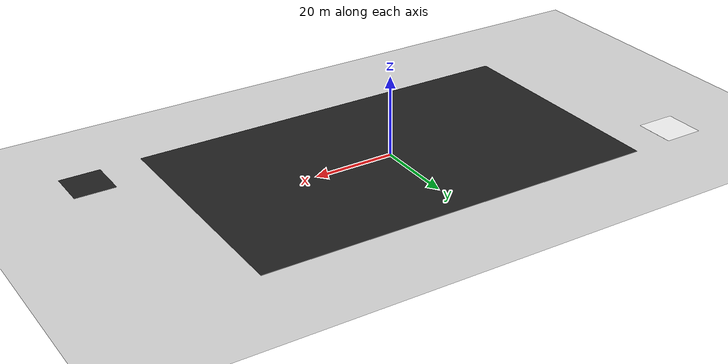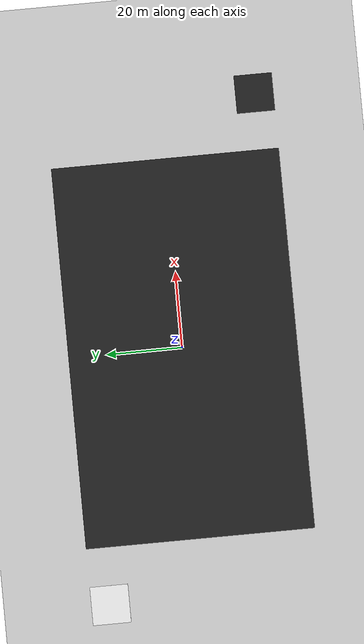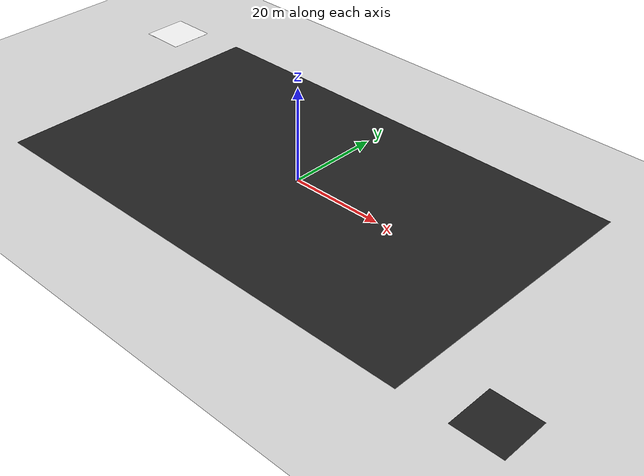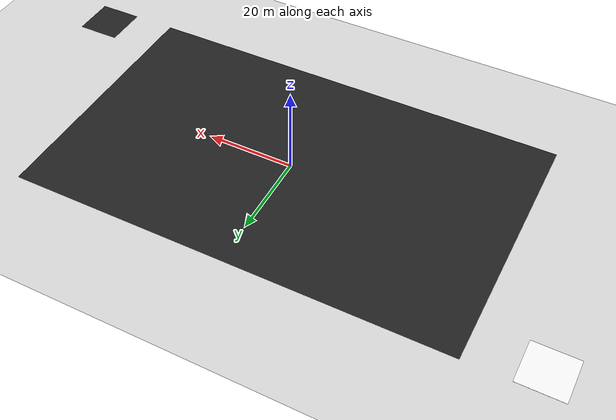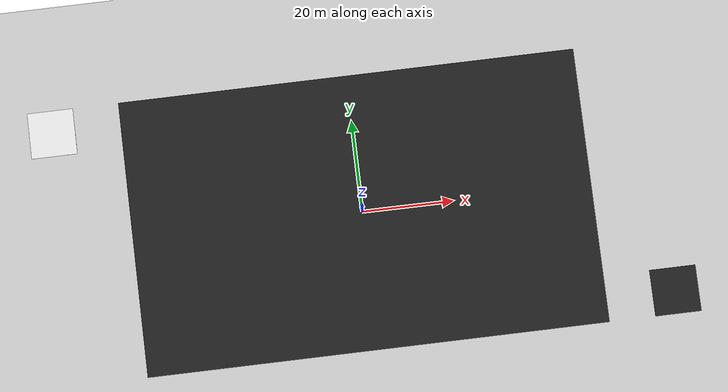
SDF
<?xml version="1.0" ?>
<sdf version="1.4">
  <!-- We use a custom world for the rrbot so that the camera angle is launched correctly -->

  <world name="default">
    <include>
      <uri>model://ground_plane</uri>
    </include>

    <!-- Global light source -->
    <include>
      <uri>model://sun</uri>
    </include>

   <include>
       <uri>model://mbzirc</uri>
    </include>

    <!-- Focus camera on tall pendulum -->
    <gui fullscreen='0'>
      <camera name='user_camera'>
        <pose>4.927360 -4.376610 3.740080 0.000000 0.275643 2.356190</pose>
        <view_controller>orbit</view_controller>
      </camera>
    </gui>

  </world>
</sdf>

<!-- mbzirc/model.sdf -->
<sdf version="1.4">
  <model name="mbzirc">
    <static>true</static>

    <link name="field">
      <pose>0 0 0.01 0 0 0</pose>
      <collision name="collision">
        <geometry>
          <plane>
            <normal>0 0 1</normal>
            <size>100 60</size>
          </plane>
        </geometry>
        <surface>
          <friction>
            <ode>
              <mu>100</mu>  <!--为什么这么大?-->
              <mu2>50</mu2>
            </ode>
          </friction>
        </surface>

      </collision>

      <visual name="carpet">
        <cast_shadows>false</cast_shadows>
        <geometry>
          <plane>
            <normal>0 0 1</normal>
            <size>100 60</size>
          </plane>
        </geometry>
  <material>
          <script>
            <uri>file://media/materials/scripts/gazebo.material</uri> <!--系统自带的？-->
            <name>Gazebo/Black</name>
          </script>
  </material>
      </visual>

<visual name="startzone">
        <pose>65 -25 0.011 0 0 0</pose>
        <cast_shadows>false</cast_shadows>
        <geometry>
          <plane>
            <normal>0 0 1</normal>
            <size>10 10</size>
          </plane>
        </geometry>
        <material>
          <script>
            <uri>file://media/materials/scripts/gazebo.material</uri>
            <name>Gazebo/Black</name>
          </script>
        </material>
      </visual>

<visual name="dropzone">
        <pose>-65 25 0.011 0 0 0</pose>
        <cast_shadows>false</cast_shadows>
        <geometry>
          <plane>
            <normal>0 0 1</normal>
            <size>10 10</size>
          </plane>
        </geometry>
        <material>
          <script>
            <uri>file://media/materials/scripts/gazebo.material</uri>
            <name>Gazebo/White</name>
          </script>
        </material>
      </visual>

  <visual name="diag_1"> <!--northeast-->
        <pose>0 0 0.011 0 0 0.785</pose>
        <cast_shadows>false</cast_shadows>
        <geometry>
          <plane>
            <normal>0 0 1</normal>
            <size>40 3</size>
          </plane>
        </geometry>
        <material>
          <script>
            <uri>file://media/materials/scripts/gazebo.material</uri>
            <name>Gazebo/White</name>
          </script>
        </material>
      </visual>

  <visual name="diag_2">  <!--northwest-->
        <pose>0 0 0.011 0 0 -0.785</pose>
        <cast_shadows>false</cast_shadows>
        <geometry>
          <plane>
            <normal>0 0 1</normal>
            <size>40 3</size>
          </plane>
        </geometry>
        <material>
          <script>
            <uri>file://media/materials/scripts/gazebo.material</uri>
            <name>Gazebo/White</name>
          </script>
        </material>
      </visual>

<visual name="right_circle1">
        <pose>14.14 0 0.011 0 0 0</pose>
        <cast_shadows>false</cast_shadows>
        <geometry>
          <mesh>
            <scale>1 1 1</scale>
            <uri>model://mbzirc/meshes/zch270-you.dae</uri>
          </mesh>
        </geometry>
        <material>
          <script>
            <uri>file://media/materials/scripts/gazebo.material</uri>
            <name>Gazebo/White</name>
          </script>
        </material>
      </visual>

 <visual name="left_circle">
        <pose>-14.14 0 0.011 0 0 0</pose>
        <cast_shadows>false</cast_shadows>
        <geometry>
          <mesh>
            <scale>1 1 1</scale>
            <uri>model://mbzirc/meshes/zch270-zuo.dae</uri>
          </mesh>
        </geometry>
        <material>
          <script>
            <uri>file://media/materials/scripts/gazebo.material</uri>
            <name>Gazebo/White</name>
          </script>
        </material>
      </visual>

    </link>

  </model>
</sdf>
